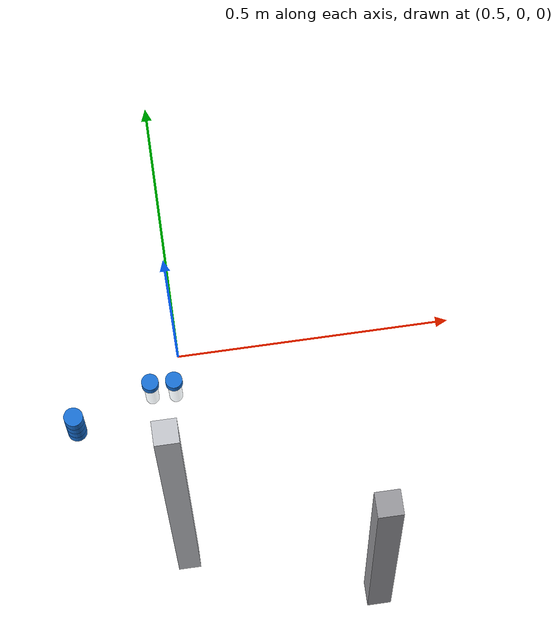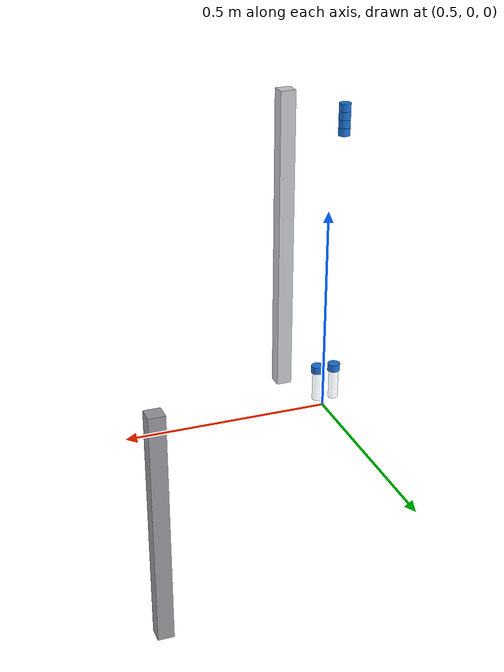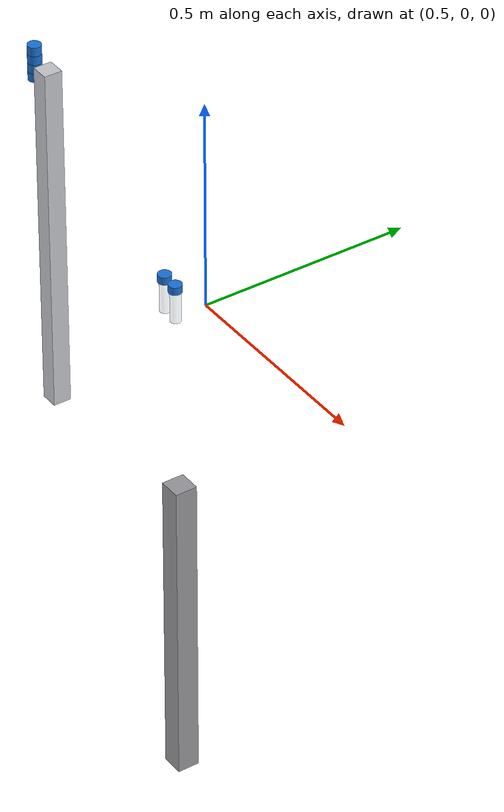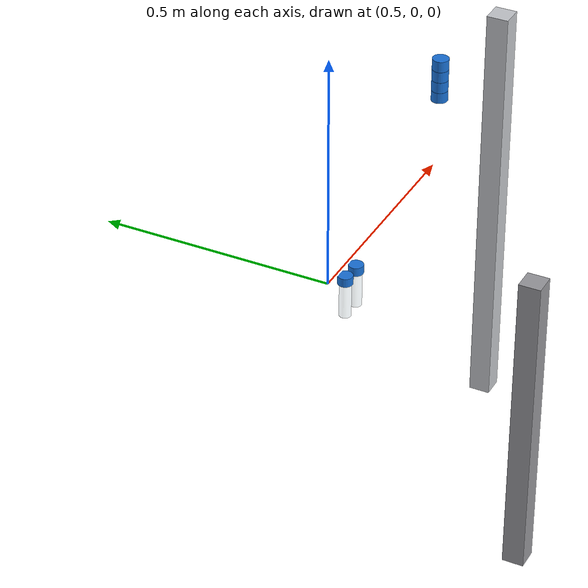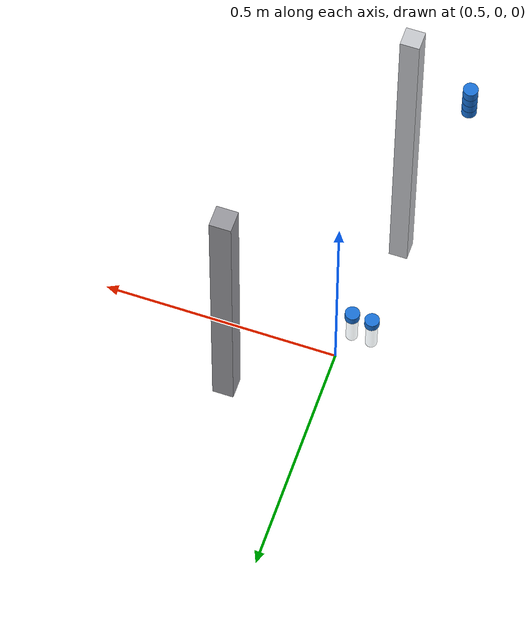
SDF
<sdf version="1.6">
 <world name="lwa4p_lab">
  <model name="table_leg1">
   <static>true</static>
   <pose>0.85 -0.3 -0.486 0 0 0.0</pose>
   <link name="l">
    <collision name="c"><geometry><box><size>0.05 0.05 0.74</size></box></geometry></collision>
    <visual name="v">
     <geometry><box><size>0.05 0.05 0.74</size></box></geometry>
     <material>
      <ambient>0.6 0.6 0.62 1.0</ambient>
      <diffuse>0.6 0.6 0.62 1.0</diffuse>
      <specular>0.2 0.2 0.2 1</specular>
     </material>
    </visual>
   </link>
  </model>
  <model name="tprofile_post_plus_x">
   <static>true</static>
   <pose>0.47 -0.35 0.2925 0 0 0.0</pose>
   <link name="l">
    <collision name="c"><geometry><box><size>0.04 0.04 0.805</size></box></geometry></collision>
    <visual name="v">
     <geometry><box><size>0.04 0.04 0.805</size></box></geometry>
     <material>
      <ambient>0.78 0.79 0.81 1.0</ambient>
      <diffuse>0.78 0.79 0.81 1.0</diffuse>
      <specular>0.2 0.2 0.2 1</specular>
     </material>
    </visual>
   </link>
  </model>
  <model name="blue_cap_2">
   <pose>0.333 -0.296 0.5900 0 0 0</pose>
   <link name="l">
    <inertial><mass>0.004</mass><inertia><ixx>1.1e-6</ixx><iyy>1.1e-6</iyy><izz>1.0e-6</izz></inertia></inertial>
    <collision name="c">
     <geometry><cylinder><radius>0.015</radius><length>0.020</length></cylinder></geometry>
     <surface><friction><ode><mu>0.8</mu><mu2>0.8</mu2></ode></friction></surface>
    </collision>
    <visual name="v">
     <geometry><cylinder><radius>0.015</radius><length>0.020</length></cylinder></geometry>
     <material>
      <ambient>0.10 0.45 0.85 1.0</ambient>
      <diffuse>0.10 0.45 0.85 1.0</diffuse>
      <specular>0.2 0.2 0.2 1</specular>
     </material>
    </visual>
   </link>
  </model>
  <model name="blue_cap_3">
   <pose>0.333 -0.296 0.6105 0 0 0</pose>
   <link name="l">
    <inertial><mass>0.004</mass><inertia><ixx>1.1e-6</ixx><iyy>1.1e-6</iyy><izz>1.0e-6</izz></inertia></inertial>
    <collision name="c">
     <geometry><cylinder><radius>0.015</radius><length>0.020</length></cylinder></geometry>
     <surface><friction><ode><mu>0.8</mu><mu2>0.8</mu2></ode></friction></surface>
    </collision>
    <visual name="v">
     <geometry><cylinder><radius>0.015</radius><length>0.020</length></cylinder></geometry>
     <material>
      <ambient>0.10 0.45 0.85 1.0</ambient>
      <diffuse>0.10 0.45 0.85 1.0</diffuse>
      <specular>0.2 0.2 0.2 1</specular>
     </material>
    </visual>
   </link>
  </model>
  <model name="blue_cap_4">
   <pose>0.333 -0.296 0.6310 0 0 0</pose>
   <link name="l">
    <inertial><mass>0.004</mass><inertia><ixx>1.1e-6</ixx><iyy>1.1e-6</iyy><izz>1.0e-6</izz></inertia></inertial>
    <collision name="c">
     <geometry><cylinder><radius>0.015</radius><length>0.020</length></cylinder></geometry>
     <surface><friction><ode><mu>0.8</mu><mu2>0.8</mu2></ode></friction></surface>
    </collision>
    <visual name="v">
     <geometry><cylinder><radius>0.015</radius><length>0.020</length></cylinder></geometry>
     <material>
      <ambient>0.10 0.45 0.85 1.0</ambient>
      <diffuse>0.10 0.45 0.85 1.0</diffuse>
      <specular>0.2 0.2 0.2 1</specular>
     </material>
    </visual>
   </link>
  </model>
  <model name="blue_cap_5">
   <pose>0.333 -0.296 0.6515 0 0 0</pose>
   <link name="l">
    <inertial><mass>0.004</mass><inertia><ixx>1.1e-6</ixx><iyy>1.1e-6</iyy><izz>1.0e-6</izz></inertia></inertial>
    <collision name="c">
     <geometry><cylinder><radius>0.015</radius><length>0.020</length></cylinder></geometry>
     <surface><friction><ode><mu>0.8</mu><mu2>0.8</mu2></ode></friction></surface>
    </collision>
    <visual name="v">
     <geometry><cylinder><radius>0.015</radius><length>0.020</length></cylinder></geometry>
     <material>
      <ambient>0.10 0.45 0.85 1.0</ambient>
      <diffuse>0.10 0.45 0.85 1.0</diffuse>
      <specular>0.2 0.2 0.2 1</specular>
     </material>
    </visual>
   </link>
  </model>
  <model name="rack_support_5">
   <static>true</static>
   <pose>0.444 -0.065 -0.0245 0 0 0</pose>
   <link name="l">
    <collision name="c">
     <geometry><box><size>0.030 0.030 0.010</size></box></geometry>
     <surface><contact><collide_bitmask>2</collide_bitmask></contact></surface>
    </collision>
   </link>
  </model>
  <model name="rack_tube_5">
   <pose>0.444 -0.065 0 0 0 0</pose>
   <link name="l">
    <inertial>
     <pose>0 0 0.0263 0 0 0</pose>
     <mass>0.05</mass>
     <inertia><ixx>3.8e-5</ixx><iyy>3.8e-5</iyy><izz>3.9e-6</izz></inertia>
    </inertial>
    <collision name="body">
     <pose>0 0 0.0263 0 0 0</pose>
     <geometry><cylinder><radius>0.01225</radius><length>0.0905</length></cylinder></geometry>
     <surface>
      <friction><ode><mu>2.0</mu><mu2>2.0</mu2></ode></friction>
      <contact>
       <collide_bitmask>2</collide_bitmask>
       <ode><kp>1e6</kp><kd>100</kd><min_depth>0.0</min_depth><max_vel>0</max_vel></ode>
      </contact>
     </surface>
    </collision>
    <visual name="body">
     <pose>0 0 0.0263 0 0 0</pose>
     <geometry><cylinder><radius>0.01225</radius><length>0.0905</length></cylinder></geometry>
     <material>
      <ambient>0.85 0.92 0.95 0.35</ambient>
      <diffuse>0.85 0.92 0.95 0.35</diffuse>
      <specular>0.2 0.2 0.2 1</specular>
     </material>
    </visual>
    <collision name="cap">
     <pose>0 0 0.0648 0 0 0</pose>
     <geometry><cylinder><radius>0.0155</radius><length>0.0185</length></cylinder></geometry>
     <surface>
      <friction><ode><mu>2.0</mu><mu2>2.0</mu2></ode></friction>
      <contact>
       <collide_bitmask>2</collide_bitmask>
       <ode><kp>1e6</kp><kd>100</kd><min_depth>0.0</min_depth><max_vel>0</max_vel></ode>
      </contact>
     </surface>
    </collision>
    <visual name="cap">
     <pose>0 0 0.0648 0 0 0</pose>
     <geometry><cylinder><radius>0.0155</radius><length>0.0185</length></cylinder></geometry>
     <material>
      <ambient>0.10 0.45 0.85 1.0</ambient>
      <diffuse>0.10 0.45 0.85 1.0</diffuse>
      <specular>0.2 0.2 0.2 1</specular>
     </material>
    </visual>
   </link>
  </model>
  <model name="rack_support_8">
   <static>true</static>
   <pose>0.487 -0.067 -0.0245 0 0 0</pose>
   <link name="l">
    <collision name="c">
     <geometry><box><size>0.030 0.030 0.010</size></box></geometry>
     <surface><contact><collide_bitmask>2</collide_bitmask></contact></surface>
    </collision>
   </link>
  </model>
  <model name="rack_tube_8">
   <pose>0.487 -0.067 0 0 0 0</pose>
   <link name="l">
    <inertial>
     <pose>0 0 0.0263 0 0 0</pose>
     <mass>0.05</mass>
     <inertia><ixx>3.8e-5</ixx><iyy>3.8e-5</iyy><izz>3.9e-6</izz></inertia>
    </inertial>
    <collision name="body">
     <pose>0 0 0.0263 0 0 0</pose>
     <geometry><cylinder><radius>0.01225</radius><length>0.0905</length></cylinder></geometry>
     <surface>
      <friction><ode><mu>2.0</mu><mu2>2.0</mu2></ode></friction>
      <contact>
       <collide_bitmask>2</collide_bitmask>
       <ode><kp>1e6</kp><kd>100</kd><min_depth>0.0</min_depth><max_vel>0</max_vel></ode>
      </contact>
     </surface>
    </collision>
    <visual name="body">
     <pose>0 0 0.0263 0 0 0</pose>
     <geometry><cylinder><radius>0.01225</radius><length>0.0905</length></cylinder></geometry>
     <material>
      <ambient>0.85 0.92 0.95 0.35</ambient>
      <diffuse>0.85 0.92 0.95 0.35</diffuse>
      <specular>0.2 0.2 0.2 1</specular>
     </material>
    </visual>
    <collision name="cap">
     <pose>0 0 0.0648 0 0 0</pose>
     <geometry><cylinder><radius>0.0155</radius><length>0.0185</length></cylinder></geometry>
     <surface>
      <friction><ode><mu>2.0</mu><mu2>2.0</mu2></ode></friction>
      <contact>
       <collide_bitmask>2</collide_bitmask>
       <ode><kp>1e6</kp><kd>100</kd><min_depth>0.0</min_depth><max_vel>0</max_vel></ode>
      </contact>
     </surface>
    </collision>
    <visual name="cap">
     <pose>0 0 0.0648 0 0 0</pose>
     <geometry><cylinder><radius>0.0155</radius><length>0.0185</length></cylinder></geometry>
     <material>
      <ambient>0.10 0.45 0.85 1.0</ambient>
      <diffuse>0.10 0.45 0.85 1.0</diffuse>
      <specular>0.2 0.2 0.2 1</specular>
     </material>
    </visual>
   </link>
  </model>
 </world>
</sdf>
